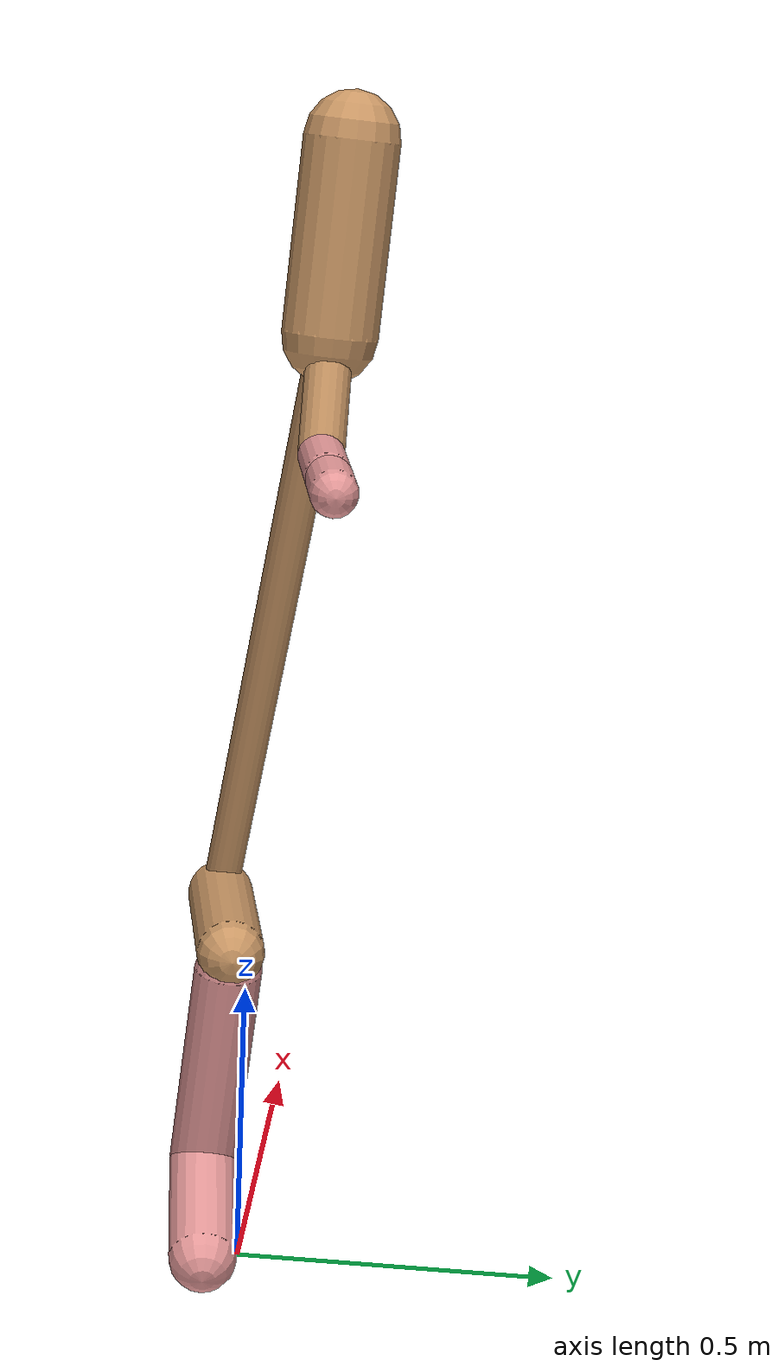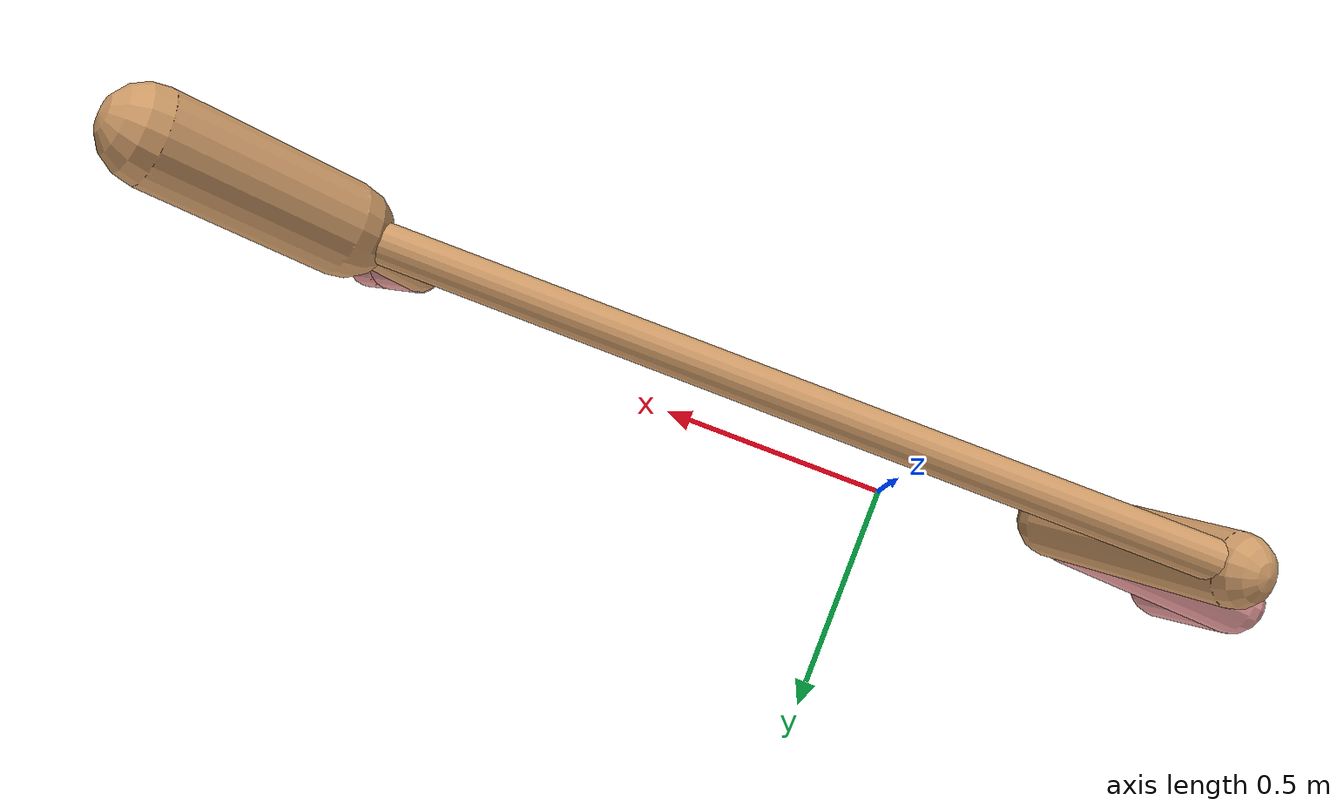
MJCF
<mujoco model="cheetah">
  <compiler angle="radian" coordinate="local" inertiafromgeom="true" settotalmass="14" />
  <default>
    <joint armature=".1" damping=".01" limited="true" solimplimit="0 .8 .03" solreflimit=".02 1" stiffness="8" />
    <geom conaffinity="0" condim="3" contype="1" friction="0.8 .1 .1" rgba="0.8 0.6 .4 1" solimp="0.0 0.8 0.01" solref="0.02 1" />
    <motor ctrllimited="true" ctrlrange="-1 1" />
  </default>
  <size nstack="300000" nuser_geom="1" />
  <option gravity="0 0 -9.81" timestep="0.01" />
  <worldbody>
    <body name="torso" pos="0.0 0.0 1.0644801313115715">
      <joint armature="0" axis="1 0 0" damping="0" limited="false" name="ignorex" pos="0 0 0" stiffness="0" type="slide" />
      <joint armature="0" axis="0 0 1" damping="0" limited="false" name="ignorez" pos="0 0 0" stiffness="0" type="slide" />
      <joint armature="0" axis="0 1 0" damping="0" limited="false" name="ignorey" pos="0 0 0" stiffness="0" type="hinge" />
      <geom fromto="-0.5 0.0 0.0 0.9706650585049152 0.0 0.0" name="torso" size="0.03365019766751904" type="capsule" />
      <geom axisangle="0 1 0 .87" name="head" pos="1.0706650585049151 0.0 0.1" size="0.07540973915421487 0.15" type="capsule" />

      <body name="bthigh" pos="-.5 0 0">
        <joint axis="0 1 0" damping="6" name="bthigh" pos="0 0 0" range="-.52 1.05" stiffness="240" type="hinge" />
        <geom axisangle="0 1 0 -3.8" name="bthigh" pos="0.12730761138610444 0.0 -0.16549989480193578" size="0.060272686838799786 0.18978781274591344" type="capsule" />
        <body name="bshin" pos="0.2146152227722089 0.0 -0.32099978960387154">
          <joint axis="0 1 0" damping="4.5" name="bshin" pos="0 0 0" range="-.785 .785" stiffness="180" type="hinge" />
          <geom axisangle="0 1 0 -2.03" name="bshin" pos="-0.1814407974607148 0.0 -0.0907203987303574" rgba="0.9 0.6 0.6 1" size="0.060272686838799786 0.19633222008197945" type="capsule" />
          <body name="bfoot" pos="-0.3628815949214296 0.0 -0.1814407974607148">
            <joint axis="0 1 0" damping="3" name="bfoot" pos="0 0 0" range="-.4 .785" stiffness="120" type="hinge" />
            <geom axisangle="0 1 0 -.27" name="bfoot" pos="0.038578921424125015 0.0 -0.12473851260467088" rgba="0.9 0.6 0.6 1" size="0.060272686838799786 0.12303485791804046" type="capsule" />
            <inertial mass="10" />
          </body>
        </body>
      </body>
      <body name="fthigh" pos="0.9706650585049152 0.0 0.0">
        <joint axis="0 1 0" damping="4.5" name="fthigh" pos="0 0 0" range="-1.5 0.8" stiffness="180" type="hinge" />
        <geom axisangle="0 1 0 .52" name="fthigh" pos="-0.04989554608158897 0.0 -0.0855352218541525" size="0.03646851260705508 0.0931" type="capsule" />
        <body name="fshin" pos="-0.09979109216317794 0.0 -0.171070443708305">
          <joint axis="0 1 0" damping="3" name="fshin" pos="0 0 0" range="-1.2 1.1" stiffness="120" type="hinge" />
          <geom axisangle="0 1 0 -.6" name="fshin" pos="0.046381400387749405 0.0 -0.06422040053688378" rgba="0.9 0.6 0.6 1" size="0.03646851260705508 0.07419999999999999" type="capsule" />
          <body name="ffoot" pos="0.09276280077549881 0.0 -0.12844080107376757">
            <joint axis="0 1 0" damping="1.5" name="ffoot" pos="0 0 0" range="-3.1 -0.3" stiffness="60" type="hinge" />
            <geom axisangle="0 1 0 -.6" name="ffoot" pos="0.033644090582416526 0.0 -0.05233525201709238" rgba="0.9 0.6 0.6 1" size="0.03646851260705508 0.049" type="capsule" />
            <inertial mass="10" />
          </body>
        </body>
      </body>
    </body>
  </worldbody>
  <actuator>
    <motor gear="120" joint="bthigh" name="bthigh" />
    <motor gear="90" joint="bshin" name="bshin" />
    <motor gear="60" joint="bfoot" name="bfoot" />
    <motor gear="120" joint="fthigh" name="fthigh" />
    <motor gear="60" joint="fshin" name="fshin" />
    <motor gear="30" joint="ffoot" name="ffoot" />
  </actuator>
</mujoco>
